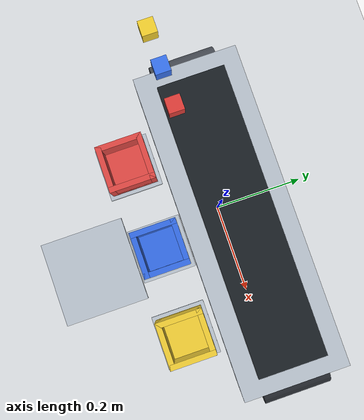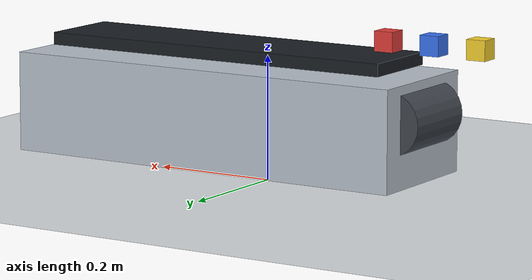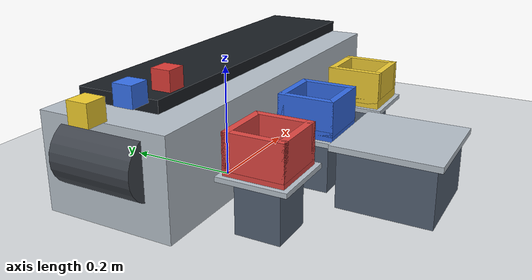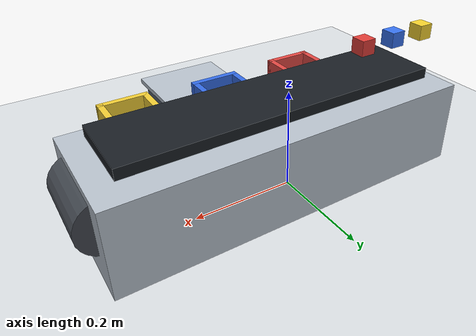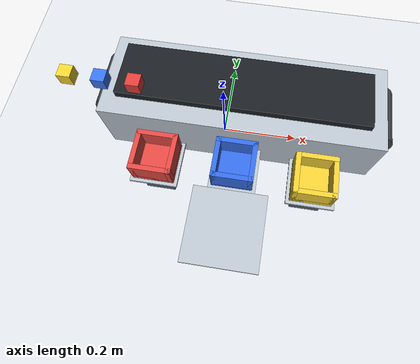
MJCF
<mujoco model="sorting_demo_base">
  <compiler angle="degree" autolimits="true"/>

  <option timestep="0.01" gravity="0 0 -9.81" integrator="implicitfast"/>

  <visual>
    <global azimuth="135" elevation="-22"/>
    <headlight ambient="0.35 0.35 0.35" diffuse="0.65 0.65 0.65" specular="0.1 0.1 0.1"/>
    <rgba haze="0.14 0.18 0.22 1"/>
  </visual>

  <statistic center="0.05 0.05 0.2" extent="1.2"/>

  <asset>
    <texture name="floor_checker" type="2d" builtin="checker" width="512" height="512"
             rgb1="0.90 0.91 0.92" rgb2="0.82 0.84 0.86"/>
    <material name="floor_mat" texture="floor_checker" texrepeat="6 6" reflectance="0.12"/>
    <material name="belt_mat" rgba="0.10 0.12 0.14 1"/>
    <material name="frame_mat" rgba="0.72 0.76 0.80 1"/>
    <material name="pedestal_mat" rgba="0.33 0.38 0.45 1"/>
    <material name="bin_red_mat" rgba="0.88 0.28 0.26 0.95"/>
    <material name="bin_blue_mat" rgba="0.20 0.42 0.90 0.95"/>
    <material name="bin_yellow_mat" rgba="0.94 0.80 0.20 0.95"/>
  </asset>

  <default>
    <default class="block_geom">
      <geom type="box" size="0.016 0.016 0.016" density="260" friction="0.9 0.03 0.02"
            solref="0.002 1" solimp="0.98 0.999 0.001" condim="3"/>
    </default>
    <default class="marker_site">
      <site type="sphere" size="0.008" group="2"/>
    </default>
  </default>

  <worldbody>
    <light name="key_light" pos="0.25 -0.65 1.05" dir="0.0 0.35 -1.0"
           diffuse="0.95 0.95 0.95" specular="0.15 0.15 0.15"/>
    <light name="fill_light" pos="-0.45 0.35 0.85" dir="0.2 -0.2 -1.0"
           diffuse="0.45 0.45 0.50" specular="0.05 0.05 0.05"/>

    <geom name="floor" type="plane" size="2 2 0.1" material="floor_mat"/>

    <body name="arm_pedestal" pos="0.05 -0.30 0.05">
      <geom name="pedestal_column" type="box" size="0.08 0.08 0.05" material="pedestal_mat"/>
      <geom name="pedestal_cap" pos="0 0 0.055" type="box" size="0.09 0.09 0.005" material="frame_mat"/>
    </body>

    <site name="arm_mount" pos="0.05 -0.30 0.10" quat="0.7071068 0 0 0.7071068"
          type="sphere" size="0.01" rgba="0 0 0 0"/>

    <body name="conveyor" pos="0.05 0.02 0.03">
      <geom name="conveyor_base" pos="0 0 0.08" type="box" size="0.34 0.11 0.08" material="frame_mat"/>
      <geom name="conveyor_belt" pos="0 0 0.18" type="box" size="0.30 0.07 0.01" material="belt_mat"/>
      <geom name="conveyor_motor" pos="-0.32 0 0.10" type="cylinder" size="0.05 0.07" euler="90 0 0"
            rgba="0.25 0.27 0.30 1"/>
      <geom name="conveyor_tail" pos="0.32 0 0.10" type="cylinder" size="0.05 0.07" euler="90 0 0"
            rgba="0.25 0.27 0.30 1"/>
    </body>

    <site name="spawn_site" class="marker_site" pos="-0.22 -0.03 0.236" rgba="0 0 0 0"/>
    <site name="pick_site" class="marker_site" pos="0.05 -0.03 0.236" rgba="0 0 0 0"/>
    <site name="red_place_site" class="marker_site" pos="-0.14 -0.16 0.270" rgba="0 0 0 0"/>
    <site name="blue_place_site" class="marker_site" pos="0.05 -0.15 0.272" rgba="0 0 0 0"/>
    <site name="yellow_place_site" class="marker_site" pos="0.24 -0.16 0.270" rgba="0 0 0 0"/>
    <site name="red_drop_site" class="marker_site" pos="-0.14 -0.16 0.130" rgba="0 0 0 0"/>
    <site name="blue_drop_site" class="marker_site" pos="0.05 -0.15 0.130" rgba="0 0 0 0"/>
    <site name="yellow_drop_site" class="marker_site" pos="0.24 -0.16 0.130" rgba="0 0 0 0"/>

    <body name="bin_red_stand" pos="-0.14 -0.16 0">
      <geom name="bin_red_pedestal" type="box" pos="0 0 0.045" size="0.038 0.038 0.045" material="pedestal_mat"/>
      <geom name="bin_red_tray_cap" type="box" pos="0 0 0.094" size="0.058 0.058 0.004" material="frame_mat"/>
    </body>

    <body name="bin_red" pos="-0.14 -0.16 0.098">
      <geom name="bin_red_floor" type="box" pos="0 0 0.008" size="0.05 0.05 0.008" material="bin_red_mat"/>
      <geom name="bin_red_wall_n" type="box" pos="0 0.044 0.038" size="0.05 0.006 0.030" material="bin_red_mat"/>
      <geom name="bin_red_wall_s" type="box" pos="0 -0.044 0.038" size="0.05 0.006 0.030" material="bin_red_mat"/>
      <geom name="bin_red_wall_e" type="box" pos="0.044 0 0.038" size="0.006 0.05 0.030" material="bin_red_mat"/>
      <geom name="bin_red_wall_w" type="box" pos="-0.044 0 0.038" size="0.006 0.05 0.030" material="bin_red_mat"/>
    </body>

    <body name="bin_blue_stand" pos="0.05 -0.15 0">
      <geom name="bin_blue_pedestal" type="box" pos="0 0 0.045" size="0.038 0.038 0.045" material="pedestal_mat"/>
      <geom name="bin_blue_tray_cap" type="box" pos="0 0 0.094" size="0.058 0.058 0.004" material="frame_mat"/>
    </body>

    <body name="bin_blue" pos="0.05 -0.15 0.098">
      <geom name="bin_blue_floor" type="box" pos="0 0 0.008" size="0.05 0.05 0.008" material="bin_blue_mat"/>
      <geom name="bin_blue_wall_n" type="box" pos="0 0.044 0.038" size="0.05 0.006 0.030" material="bin_blue_mat"/>
      <geom name="bin_blue_wall_s" type="box" pos="0 -0.044 0.038" size="0.05 0.006 0.030" material="bin_blue_mat"/>
      <geom name="bin_blue_wall_e" type="box" pos="0.044 0 0.038" size="0.006 0.05 0.030" material="bin_blue_mat"/>
      <geom name="bin_blue_wall_w" type="box" pos="-0.044 0 0.038" size="0.006 0.05 0.030" material="bin_blue_mat"/>
    </body>

    <body name="bin_yellow_stand" pos="0.24 -0.16 0">
      <geom name="bin_yellow_pedestal" type="box" pos="0 0 0.045" size="0.038 0.038 0.045" material="pedestal_mat"/>
      <geom name="bin_yellow_tray_cap" type="box" pos="0 0 0.094" size="0.058 0.058 0.004" material="frame_mat"/>
    </body>

    <body name="bin_yellow" pos="0.24 -0.16 0.098">
      <geom name="bin_yellow_floor" type="box" pos="0 0 0.008" size="0.05 0.05 0.008" material="bin_yellow_mat"/>
      <geom name="bin_yellow_wall_n" type="box" pos="0 0.044 0.038" size="0.05 0.006 0.030" material="bin_yellow_mat"/>
      <geom name="bin_yellow_wall_s" type="box" pos="0 -0.044 0.038" size="0.05 0.006 0.030" material="bin_yellow_mat"/>
      <geom name="bin_yellow_wall_e" type="box" pos="0.044 0 0.038" size="0.006 0.05 0.030" material="bin_yellow_mat"/>
      <geom name="bin_yellow_wall_w" type="box" pos="-0.044 0 0.038" size="0.006 0.05 0.030" material="bin_yellow_mat"/>
    </body>

    <body name="block_red" pos="-0.20 -0.03 0.236">
      <freejoint name="block_red_free"/>
      <geom name="block_red_geom" class="block_geom" rgba="0.88 0.24 0.22 1"/>
    </body>

    <body name="block_blue" pos="-0.28 -0.03 0.236">
      <freejoint name="block_blue_free"/>
      <geom name="block_blue_geom" class="block_geom" rgba="0.22 0.45 0.94 1"/>
    </body>

    <body name="block_yellow" pos="-0.36 -0.03 0.236">
      <freejoint name="block_yellow_free"/>
      <geom name="block_yellow_geom" class="block_geom" rgba="0.96 0.82 0.18 1"/>
    </body>

    <camera name="sorting_cam" pos="0.05 -0.55 0.70" xyaxes="1 0 0 0 0.637 0.771"/>
    <camera name="overview_cam" pos="0.82 -0.72 0.62" xyaxes="0.659 0.752 0 -0.437 0.383 0.814"/>
  </worldbody>
</mujoco>
